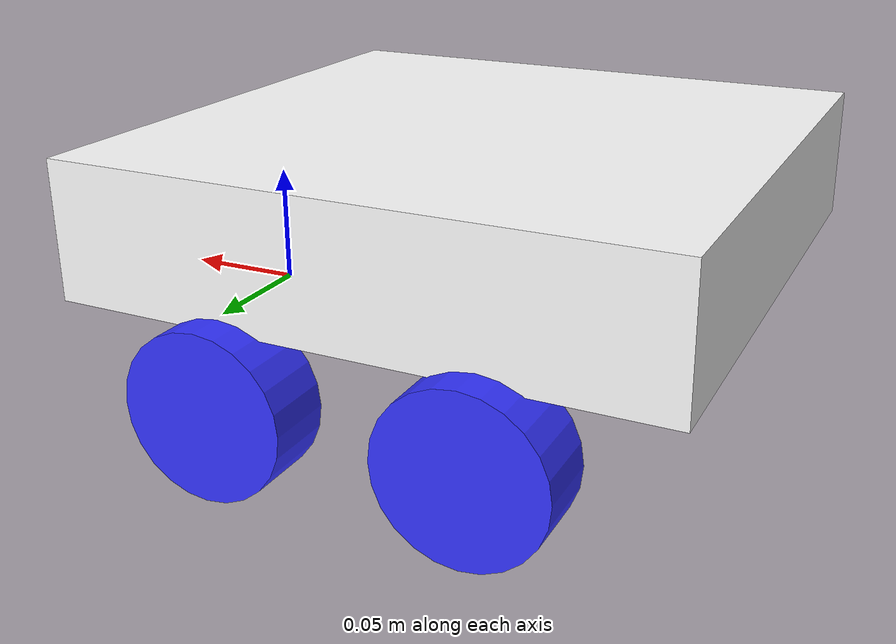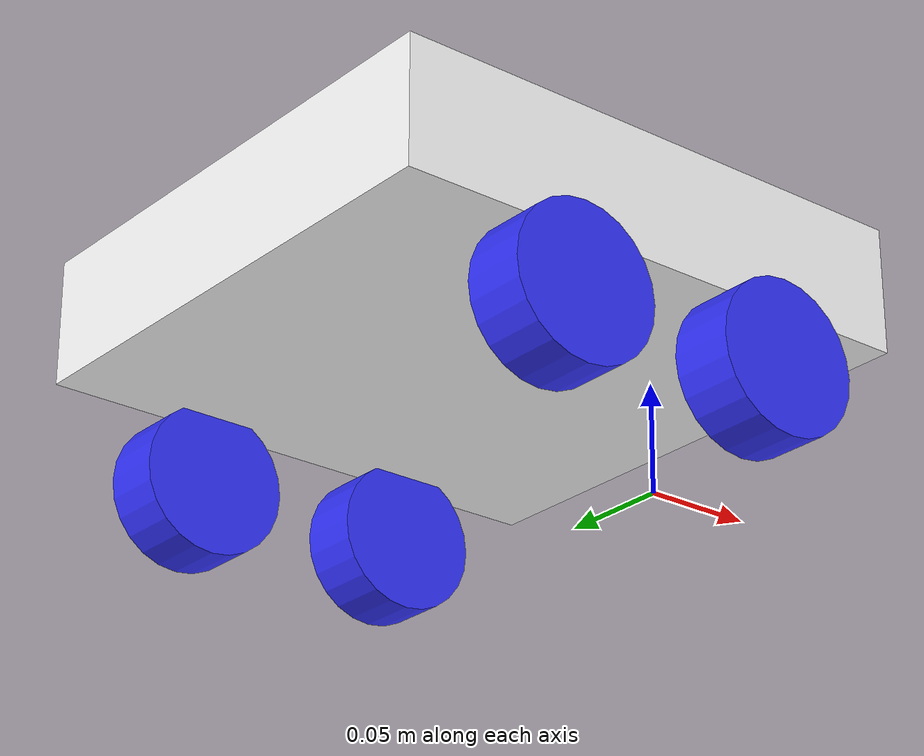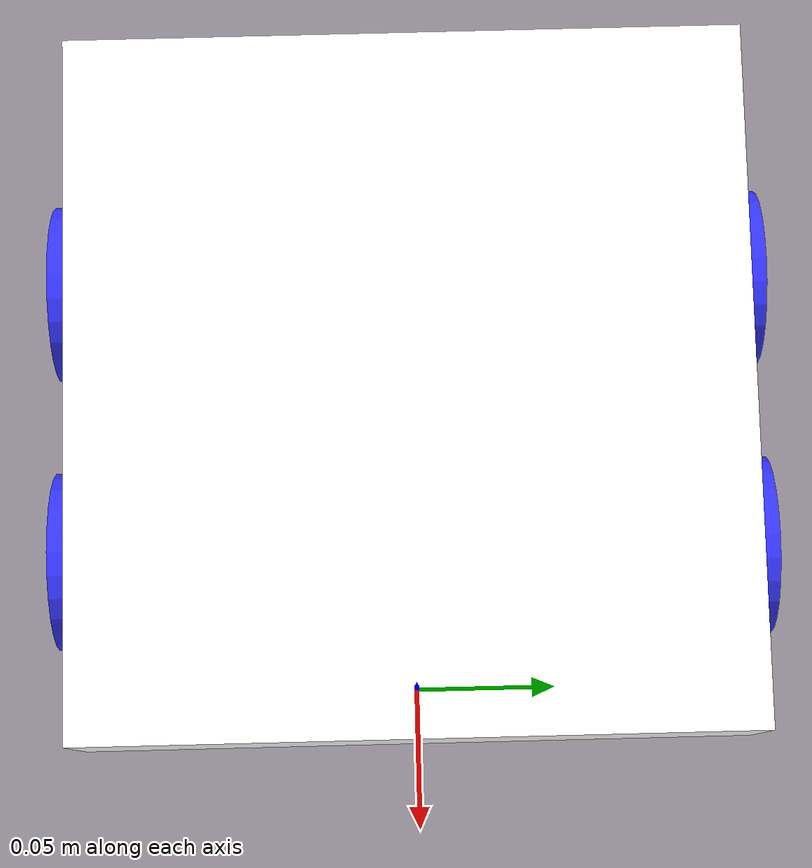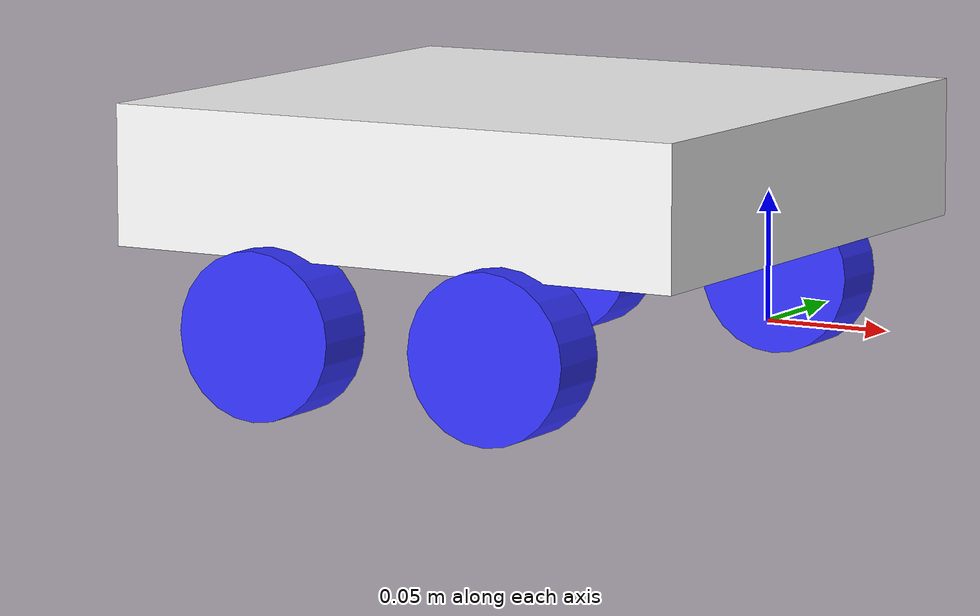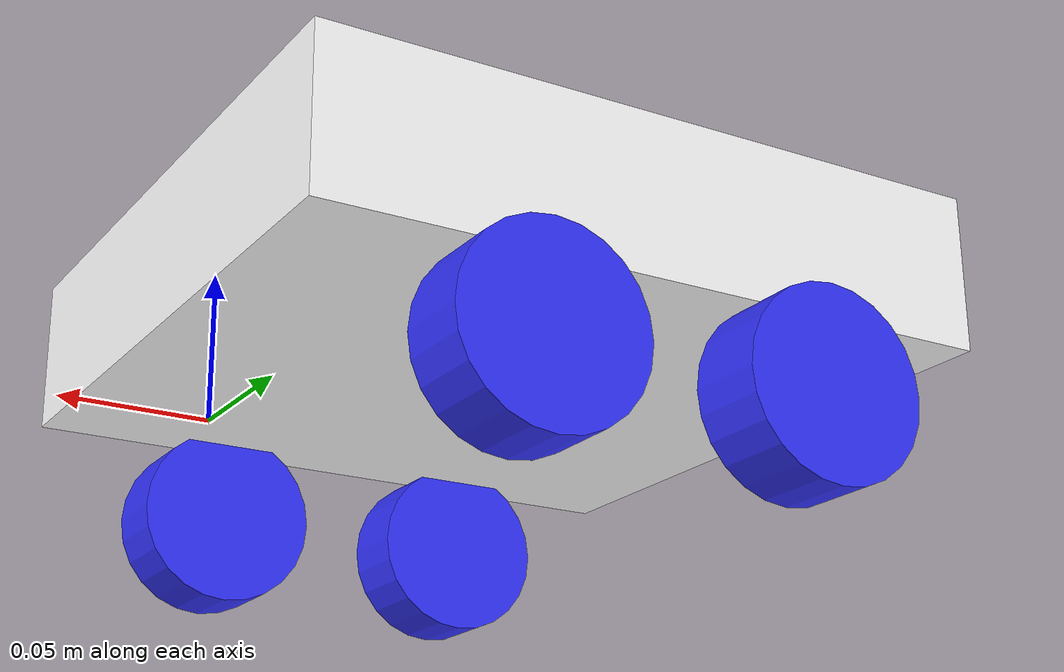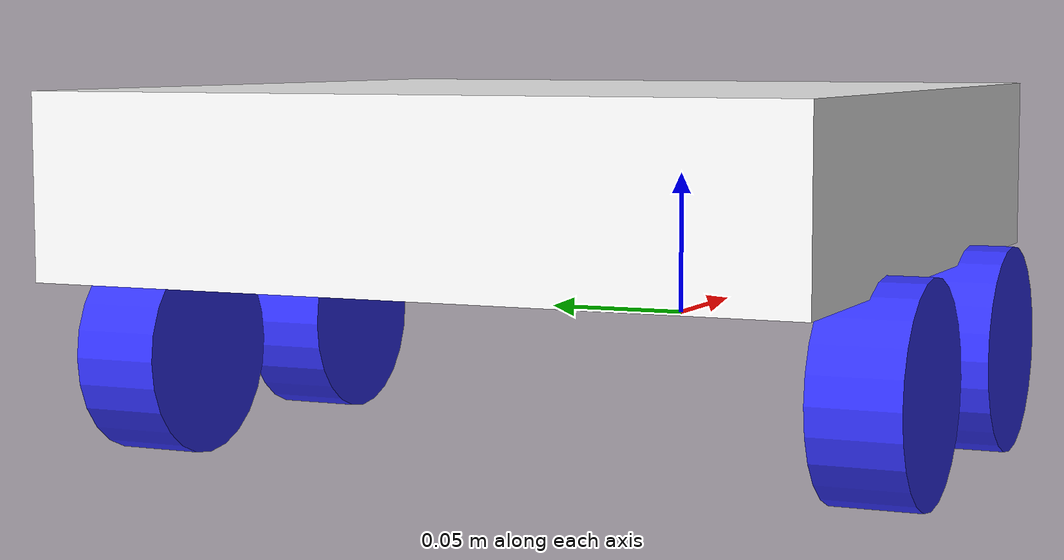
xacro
<?xml version="1.0"?>
<robot xmlns:xacro="http://www.ros.org/wiki/xacro"  >

<xacro:include filename="inertial_macros.xacro"/>

        <material name="white">
        <color rgba="1 1 1 1"/>
        </material>

         <material name="orange">
        <color rgba="1 0.3 0.1 1"/>
        </material>

         <material name="blue">
        <color rgba="0.2 0.2 1 1"/>
        </material>

         <material name="black">
        <color rgba="0 0 0 1"/>
        </material>

         <material name="red">
        <color rgba="1 0 0 1"/>
        </material>

        <!--BASE LINK-->

        <link name="base_link">

        </link>

        <joint name="chassis_joint" type="fixed">
            <parent link="base_link"/>
            <child link="chassis"/>
            <origin xyz="-0.1 0 0"/>
        </joint>

        <link name="base_footprint"/>

        <joint name="base_footprint_joint" type="fixed">
            <parent link="base_link"/>
            <child link="base_footprint"/>
            <origin xyz="0 0 0.0325"/>
        </joint>

         <!--Chassis LINK  jak bedziesz zmieniał wymiary to w kolizji tez trzeba zmienic-->
        <link name="chassis">
            <visual>
                <origin xyz="0 0 0.055"/>
                <geometry>
                    <box size = "0.24 0.232 0.055"/>
                </geometry>
                <material name="white"/>
            </visual>
              <collision>
                <origin xyz="0 0 0.055"/>
                <geometry>
                    <box size = "0.24 0.232 0.055"/>
                </geometry>
            </collision>
            <xacro:inertial_box mass="0.5" x="0.24" y="0.232" z="0.055">
                <origin xyz="0 0 0.055" rpy="0 0 0"/>
            </xacro:inertial_box>

        </link>
        <gazebo reference ="chassis">
            <material>Gazebo/White</material>
        </gazebo>

         <!--lewe przednie koło-->
         <joint name="left_front_wheel_joint" type="continuous">
            <parent link="base_link"/>
            <child link="left_front_wheel"/>
            <origin xyz="-0.05 0.116 0" rpy="-${pi/2} 0 0"/>
            <axis xyz="0 0 1"/>

         </joint>

          <link name="left_front_wheel">
            <visual>

                <geometry>
                    <cylinder radius= "0.0325" length="0.027"/>
                </geometry>
                <material name="blue"/>
            </visual>
            <collision>
                <geometry>
                    <cylinder radius= "0.0325" length="0.027"/>
                </geometry>
            </collision>
            <xacro:inertial_cylinder mass="0.1" length="0.027" radius="0.0325">
                <origin xyz="0 0 0" rpy="0 0 0"/>
            </xacro:inertial_cylinder>
        </link>
        <gazebo reference ="left_front_wheel">
            <material>Gazebo/Blue</material>
        </gazebo>

         <!--lewe tylnie koło-->
         <joint name="left_back_wheel_joint" type="continuous">
            <parent link="base_link"/>
            <child link="left_back_wheel"/>
            <origin xyz="-0.15 0.116 0" rpy="-${pi/2} 0 0"/>
            <axis xyz="0 0 1"/>

         </joint>

          <link name="left_back_wheel">
            <visual>

                <geometry>
                    <cylinder radius= "0.0325" length="0.027"/>
                </geometry>
                <material name="blue"/>
            </visual>
             <collision>
                <geometry>
                    <cylinder radius= "0.0325" length="0.027"/>
                </geometry>
            </collision>
            <xacro:inertial_cylinder mass="0.1" length="0.027" radius="0.0325">
                <origin xyz="0 0 0" rpy="0 0 0"/>
            </xacro:inertial_cylinder>
        </link>
         <gazebo reference ="left_back_wheel">
            <material>Gazebo/Blue</material>
        </gazebo>

        <!--prawe przednie koło-->
         <joint name="right_front_wheel_joint" type="continuous">
            <parent link="base_link"/>
            <child link="right_front_wheel"/>
            <origin xyz="-0.05 -0.116 0" rpy="${pi/2} 0 0"/>
            <axis xyz="0 0 -1"/>

         </joint>

          <link name="right_front_wheel">
            <visual>

                <geometry>
                    <cylinder radius= "0.0325" length="0.027"/>
                </geometry>
                <material name="blue"/>
            </visual>
              <collision>

                <geometry>
                    <cylinder radius= "0.0325" length="0.027"/>
                </geometry>
                <material name="blue"/>
            </collision>
            <xacro:inertial_cylinder mass="0.1" length="0.027" radius="0.0325">
                <origin xyz="0 0 0" rpy="0 0 0"/>
            </xacro:inertial_cylinder>
        </link>
         <gazebo reference ="right_front_wheel">
            <material>Gazebo/Blue</material>
        </gazebo>

  <!--prawe tylnie koło-->
         <joint name="right_back_wheel_joint" type="continuous">
            <parent link="base_link"/>
            <child link="right_back_wheel"/>
            <origin xyz="-0.15 -0.116 0" rpy="${pi/2} 0 0"/>
            <axis xyz="0 0 -1"/>

         </joint>

          <link name="right_back_wheel">
            <visual>

                <geometry>
                    <cylinder radius= "0.0325" length="0.027"/>
                </geometry>
                <material name="blue"/>
            </visual>
               <collision>
                <geometry>
                    <cylinder radius= "0.0325" length="0.027"/>
                </geometry>
            </collision>
            <xacro:inertial_cylinder mass="0.1" length="0.027" radius="0.0325">
                <origin xyz="0 0 0" rpy="0 0 0"/>
            </xacro:inertial_cylinder>
        </link>

        <gazebo reference ="right_back_wheel">
            <material>Gazebo/Blue</material>
        </gazebo>
</robot>

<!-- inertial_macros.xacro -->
<root xmlns:xacro="http://www.ros.org/wiki/xacro">
    <!-- Specify some standard inertial calculations https://en.wikipedia.org/wiki/List_of_moments_of_inertia -->
    <!-- These make use of xacro's mathematical functionality -->

    <xacro:macro name="inertial_sphere" params="mass radius *origin">
        <inertial>
            <xacro:insert_block name="origin"/>
            <mass value="${mass}" />
            <inertia ixx="${(2/5) * mass * (radius*radius)}" ixy="0.0" ixz="0.0"
                    iyy="${(2/5) * mass * (radius*radius)}" iyz="0.0"
                    izz="${(2/5) * mass * (radius*radius)}" />
        </inertial>
    </xacro:macro>

    <xacro:macro name="inertial_box" params="mass x y z *origin">
        <inertial>
            <xacro:insert_block name="origin"/>
            <mass value="${mass}" />
            <inertia ixx="${(1/12) * mass * (y*y+z*z)}" ixy="0.0" ixz="0.0"
                    iyy="${(1/12) * mass * (x*x+z*z)}" iyz="0.0"
                    izz="${(1/12) * mass * (x*x+y*y)}" />
        </inertial>
    </xacro:macro>

    <xacro:macro name="inertial_cylinder" params="mass length radius *origin">
        <inertial>
            <xacro:insert_block name="origin"/>
            <mass value="${mass}" />
            <inertia ixx="${(1/12) * mass * (3*radius*radius + length*length)}" ixy="0.0" ixz="0.0"
                    iyy="${(1/12) * mass * (3*radius*radius + length*length)}" iyz="0.0"
                    izz="${(1/2) * mass * (radius*radius)}" />
        </inertial>
    </xacro:macro>

</root>
